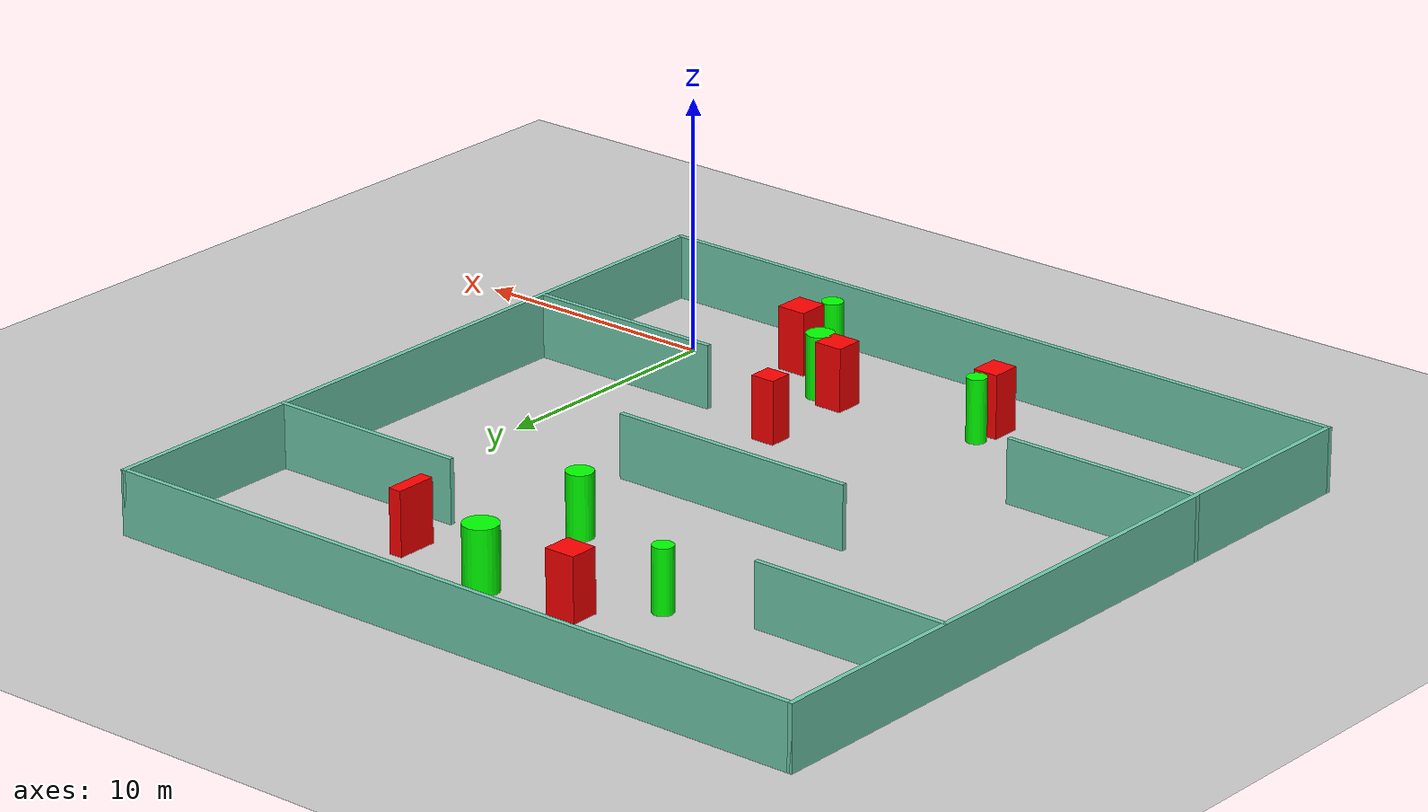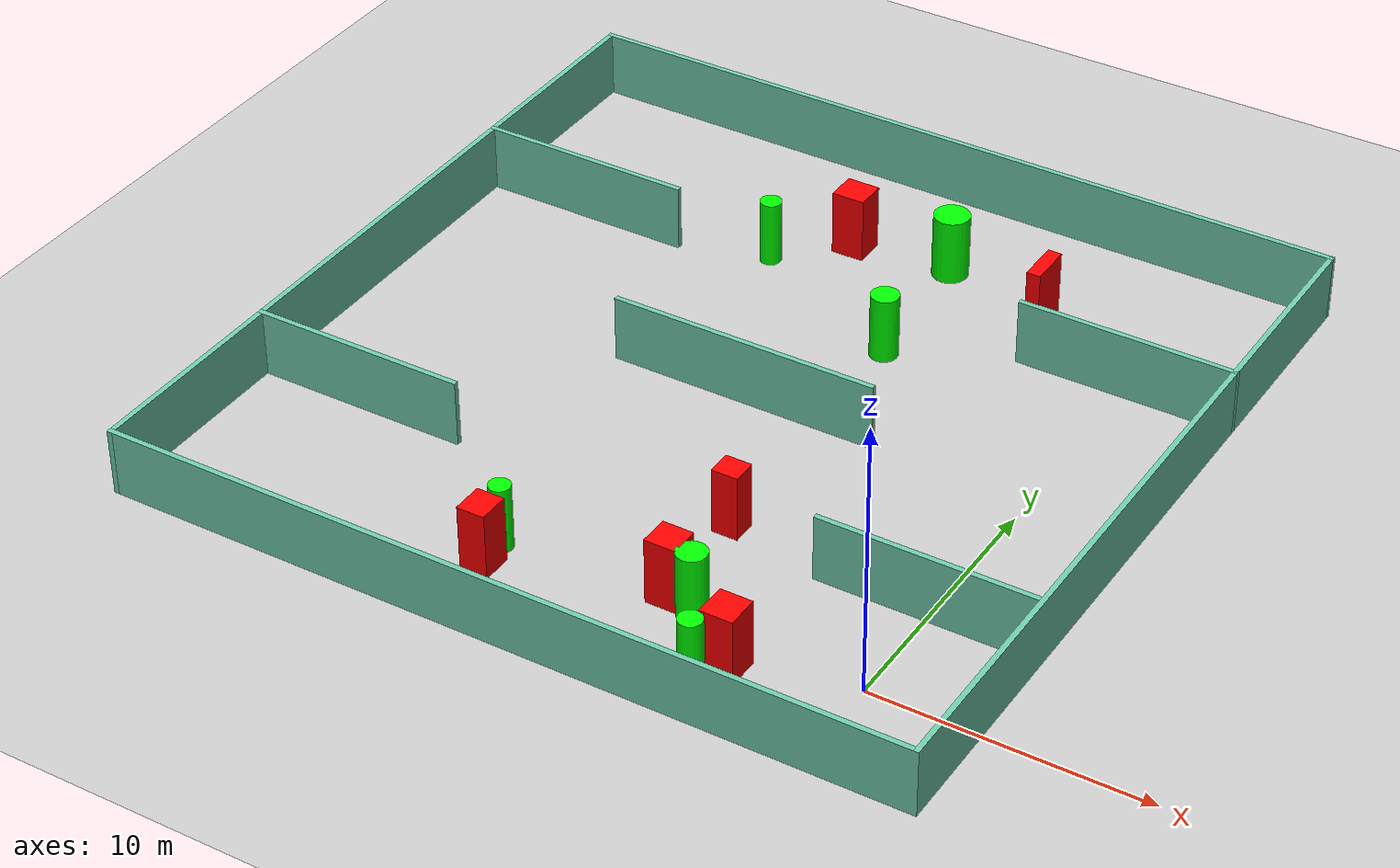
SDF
<sdf version="1.7">
 <world name="default">
  <light name="sun" type="directional">
   <pose>0 0 10 0 -0 0</pose>
   <diffuse>0.8 0.8 0.8 1</diffuse>
   <specular>0.2 0.2 0.2 1</specular>
   <attenuation>
    <range>1000</range>
    <constant>0.9</constant>
    <linear>0.01</linear>
    <quadratic>0.001</quadratic>
   </attenuation>
   <direction>-0.5 0.1 -0.9</direction>
   <spot><inner_angle>0</inner_angle><outer_angle>0</outer_angle><falloff>0</falloff></spot>
  </light>
  <model name="ground_plane">
   <static>1</static>
   <link name="link">
    <collision name="collision">
     <geometry><plane><normal>0 0 1</normal><size>100 100</size></plane></geometry>
     <surface>
      <contact><collide_bitmask>65535</collide_bitmask></contact>
      <friction><ode><mu>100</mu><mu2>50</mu2></ode></friction>
     </surface>
    </collision>
    <visual name="visual">
     <cast_shadows>0</cast_shadows>
     <geometry><plane><normal>0 0 1</normal><size>100 100</size></plane></geometry>
     <material>
      <script><uri>file://media/materials/scripts/gazebo.material</uri><name>Gazebo/Grey</name></script>
     </material>
    </visual>
   </link>
  </model>
  <gravity>0 0 -9.8</gravity>
  <magnetic_field>6e-06 2.3e-05 -4.2e-05</magnetic_field>
  <atmosphere type="adiabatic"/>
  <physics type="ode">
   <max_step_size>0.001</max_step_size>
   <real_time_factor>1</real_time_factor>
   <real_time_update_rate>1000</real_time_update_rate>
  </physics>
  <scene><ambient>0.4 0.4 0.4 1</ambient><background>0.7 0.7 0.7 1</background><shadows>1</shadows></scene>
  <spherical_coordinates>
   <surface_model>EARTH_WGS84</surface_model>
   <latitude_deg>0</latitude_deg>
   <longitude_deg>0</longitude_deg>
   <elevation>0</elevation>
   <heading_deg>0</heading_deg>
  </spherical_coordinates>
  <model name="my_base_walls">
   <link name="Wall_10">
    <collision name="Wall_10_Collision">
     <geometry><box><size>8.2 0.2 2.5</size></box></geometry>
     <pose>0 0 1.25 0 -0 0</pose>
    </collision>
    <visual name="Wall_10_Visual">
     <pose>0 0 1.25 0 -0 0</pose>
     <geometry><box><size>8.2 0.2 2.5</size></box></geometry>
     <material>
      <script><uri>file://media/materials/scripts/gazebo.material</uri><name>Gazebo/Grey</name></script>
      <ambient>0.435294 0.796078 0.67451 1</ambient>
     </material>
     <meta><layer>0</layer></meta>
    </visual>
    <pose>-11 -7 0 0 -0 0</pose>
   </link>
   <link name="Wall_12">
    <collision name="Wall_12_Collision">
     <geometry><box><size>8.2 0.2 2.5</size></box></geometry>
     <pose>0 0 1.25 0 -0 0</pose>
    </collision>
    <visual name="Wall_12_Visual">
     <pose>0 0 1.25 0 -0 0</pose>
     <geometry><box><size>8.2 0.2 2.5</size></box></geometry>
     <material>
      <script><uri>file://media/materials/scripts/gazebo.material</uri><name>Gazebo/Grey</name></script>
      <ambient>0.435294 0.796078 0.67451 1</ambient>
     </material>
     <meta><layer>0</layer></meta>
    </visual>
    <pose>-11 7 0 0 -0 0</pose>
   </link>
   <link name="Wall_14">
    <collision name="Wall_14_Collision">
     <geometry><box><size>8.2 0.2 2.5</size></box></geometry>
     <pose>0 0 1.25 0 -0 0</pose>
    </collision>
    <visual name="Wall_14_Visual">
     <pose>0 0 1.25 0 -0 0</pose>
     <geometry><box><size>8.2 0.2 2.5</size></box></geometry>
     <material>
      <script><uri>file://media/materials/scripts/gazebo.material</uri><name>Gazebo/Grey</name></script>
      <ambient>0.435294 0.796078 0.67451 1</ambient>
     </material>
     <meta><layer>0</layer></meta>
    </visual>
    <pose>11 7 0 0 -0 3.14159</pose>
   </link>
   <link name="Wall_16">
    <collision name="Wall_16_Collision">
     <geometry><box><size>10.2 0.2 2.5</size></box></geometry>
     <pose>0 0 1.25 0 -0 0</pose>
    </collision>
    <visual name="Wall_16_Visual">
     <pose>0 0 1.25 0 -0 0</pose>
     <geometry><box><size>10.2 0.2 2.5</size></box></geometry>
     <material>
      <script><uri>file://media/materials/scripts/gazebo.material</uri><name>Gazebo/Grey</name></script>
      <ambient>0.435294 0.796078 0.67451 1</ambient>
     </material>
     <meta><layer>0</layer></meta>
    </visual>
    <pose>0 0 0 0 -0 3.14159</pose>
   </link>
   <link name="Wall_2">
    <collision name="Wall_2_Collision">
     <geometry><box><size>30.2 0.2 2.5</size></box></geometry>
     <pose>0 0 1.25 0 -0 0</pose>
    </collision>
    <visual name="Wall_2_Visual">
     <pose>0 0 1.25 0 -0 0</pose>
     <geometry><box><size>30.2 0.2 2.5</size></box></geometry>
     <material>
      <script><uri>file://media/materials/scripts/gazebo.material</uri><name>Gazebo/Grey</name></script>
      <ambient>0.435294 0.796078 0.67451 1</ambient>
     </material>
     <meta><layer>0</layer></meta>
    </visual>
    <pose>0 -15 0 0 -0 3.14159</pose>
   </link>
   <link name="Wall_3">
    <collision name="Wall_3_Collision">
     <geometry><box><size>30.2 0.2 2.5</size></box></geometry>
     <pose>0 0 1.25 0 -0 0</pose>
    </collision>
    <visual name="Wall_3_Visual">
     <pose>0 0 1.25 0 -0 0</pose>
     <geometry><box><size>30.2 0.2 2.5</size></box></geometry>
     <material>
      <script><uri>file://media/materials/scripts/gazebo.material</uri><name>Gazebo/Grey</name></script>
      <ambient>0.435294 0.796078 0.67451 1</ambient>
     </material>
     <meta><layer>0</layer></meta>
    </visual>
    <pose>-15 0 0 0 -0 1.5708</pose>
   </link>
   <link name="Wall_4">
    <collision name="Wall_4_Collision">
     <geometry><box><size>30.2 0.2 2.5</size></box></geometry>
     <pose>0 0 1.25 0 -0 0</pose>
    </collision>
    <visual name="Wall_4_Visual">
     <pose>0 0 1.25 0 -0 0</pose>
     <geometry><box><size>30.2 0.2 2.5</size></box></geometry>
     <material>
      <script><uri>file://media/materials/scripts/gazebo.material</uri><name>Gazebo/Grey</name></script>
      <ambient>0.435294 0.796078 0.67451 1</ambient>
     </material>
     <meta><layer>0</layer></meta>
    </visual>
    <pose>0 15 0 0 -0 0</pose>
   </link>
   <link name="Wall_6">
    <collision name="Wall_6_Collision">
     <geometry><box><size>30.2 0.2 2.5</size></box></geometry>
     <pose>0 0 1.25 0 -0 0</pose>
    </collision>
    <visual name="Wall_6_Visual">
     <pose>0 0 1.25 0 -0 0</pose>
     <geometry><box><size>30.2 0.2 2.5</size></box></geometry>
     <material>
      <script><uri>file://media/materials/scripts/gazebo.material</uri><name>Gazebo/Grey</name></script>
      <ambient>0.435294 0.796078 0.67451 1</ambient>
     </material>
     <meta><layer>0</layer></meta>
    </visual>
    <pose>15 0 0 0 -0 1.5708</pose>
   </link>
   <link name="Wall_8">
    <collision name="Wall_8_Collision">
     <geometry><box><size>8.2 0.2 2.5</size></box></geometry>
     <pose>0 0 1.25 0 -0 0</pose>
    </collision>
    <visual name="Wall_8_Visual">
     <pose>0 0 1.25 0 -0 0</pose>
     <geometry><box><size>8.2 0.2 2.5</size></box></geometry>
     <material>
      <script><uri>file://media/materials/scripts/gazebo.material</uri><name>Gazebo/Grey</name></script>
      <ambient>0.435294 0.796078 0.67451 1</ambient>
     </material>
     <meta><layer>0</layer></meta>
    </visual>
    <pose>11 -7 0 0 -0 3.14159</pose>
   </link>
   <static>1</static>
   <pose>-11 11 0 0 -0 0</pose>
  </model>
  <model name="cylinder1">
   <static>1</static>
   <link name="link">
    <inertial>
     <mass>1</mass>
     <inertia><ixx>0.5</ixx><ixy>0</ixy><ixz>0</ixz><iyy>0.5</iyy><iyz>0</iyz><izz>1</izz></inertia>
    </inertial>
    <collision name="collision">
     <geometry><cylinder><radius>0.4050356095038431</radius><length>2.5</length></cylinder></geometry>
    </collision>
    <visual name="visual">
     <geometry><cylinder><radius>0.4050356095038431</radius><length>2.5</length></cylinder></geometry>
     <material>
      <ambient>0 1 0 1</ambient>
      <diffuse>0 1 0 1</diffuse>
      <specular>0.1 0.1 0.1 1</specular>
      <emissive>0 0 0 0</emissive>
     </material>
    </visual>
   </link>
   <pose>-14.661264872799409 19.013526727993877 1.25 0 0 0</pose>
  </model>
  <model name="cylinder2">
   <static>1</static>
   <link name="link">
    <inertial>
     <mass>1</mass>
     <inertia><ixx>0.5</ixx><ixy>0</ixy><ixz>0</ixz><iyy>0.5</iyy><iyz>0</iyz><izz>1</izz></inertia>
    </inertial>
    <collision name="collision">
     <geometry><cylinder><radius>0.4264479746175014</radius><length>2.5</length></cylinder></geometry>
    </collision>
    <visual name="visual">
     <geometry><cylinder><radius>0.4264479746175014</radius><length>2.5</length></cylinder></geometry>
     <material>
      <ambient>0 1 0 1</ambient>
      <diffuse>0 1 0 1</diffuse>
      <specular>0.1 0.1 0.1 1</specular>
      <emissive>0 0 0 0</emissive>
     </material>
    </visual>
   </link>
   <pose>-4.778207232490637 -2.353179636397915 1.25 0 0 0</pose>
  </model>
  <model name="cylinder3">
   <static>1</static>
   <link name="link">
    <inertial>
     <mass>1</mass>
     <inertia><ixx>0.5</ixx><ixy>0</ixy><ixz>0</ixz><iyy>0.5</iyy><iyz>0</iyz><izz>1</izz></inertia>
    </inertial>
    <collision name="collision">
     <geometry><cylinder><radius>0.5476409340282061</radius><length>2.5</length></cylinder></geometry>
    </collision>
    <visual name="visual">
     <geometry><cylinder><radius>0.5476409340282061</radius><length>2.5</length></cylinder></geometry>
     <material>
      <ambient>0 1 0 1</ambient>
      <diffuse>0 1 0 1</diffuse>
      <specular>0.1 0.1 0.1 1</specular>
      <emissive>0 0 0 0</emissive>
     </material>
    </visual>
   </link>
   <pose>-6.463301500141123 0.4387551804081897 1.25 0 0 0</pose>
  </model>
  <model name="cylinder4">
   <static>1</static>
   <link name="link">
    <inertial>
     <mass>1</mass>
     <inertia><ixx>0.5</ixx><ixy>0</ixy><ixz>0</ixz><iyy>0.5</iyy><iyz>0</iyz><izz>1</izz></inertia>
    </inertial>
    <collision name="collision">
     <geometry><cylinder><radius>0.3928979551562861</radius><length>2.5</length></cylinder></geometry>
    </collision>
    <visual name="visual">
     <geometry><cylinder><radius>0.3928979551562861</radius><length>2.5</length></cylinder></geometry>
     <material>
      <ambient>0 1 0 1</ambient>
      <diffuse>0 1 0 1</diffuse>
      <specular>0.1 0.1 0.1 1</specular>
      <emissive>0 0 0 0</emissive>
     </material>
    </visual>
   </link>
   <pose>-13.523478430800589 0.16235228138500846 1.25 0 0 0</pose>
  </model>
  <model name="cylinder5">
   <static>1</static>
   <link name="link">
    <inertial>
     <mass>1</mass>
     <inertia><ixx>0.5</ixx><ixy>0</ixy><ixz>0</ixz><iyy>0.5</iyy><iyz>0</iyz><izz>1</izz></inertia>
    </inertial>
    <collision name="collision">
     <geometry><cylinder><radius>0.6766036624832946</radius><length>2.5</length></cylinder></geometry>
    </collision>
    <visual name="visual">
     <geometry><cylinder><radius>0.6766036624832946</radius><length>2.5</length></cylinder></geometry>
     <material>
      <ambient>0 1 0 1</ambient>
      <diffuse>0 1 0 1</diffuse>
      <specular>0.1 0.1 0.1 1</specular>
      <emissive>0 0 0 0</emissive>
     </material>
    </visual>
   </link>
   <pose>-8.66521803279799 21.567331367196857 1.25 0 0 0</pose>
  </model>
  <model name="cylinder6">
   <static>1</static>
   <link name="link">
    <inertial>
     <mass>1</mass>
     <inertia><ixx>0.5</ixx><ixy>0</ixy><ixz>0</ixz><iyy>0.5</iyy><iyz>0</iyz><izz>1</izz></inertia>
    </inertial>
    <collision name="collision">
     <geometry><cylinder><radius>0.5227663440174812</radius><length>2.5</length></cylinder></geometry>
    </collision>
    <visual name="visual">
     <geometry><cylinder><radius>0.5227663440174812</radius><length>2.5</length></cylinder></geometry>
     <material>
      <ambient>0 1 0 1</ambient>
      <diffuse>0 1 0 1</diffuse>
      <specular>0.1 0.1 0.1 1</specular>
      <emissive>0 0 0 0</emissive>
     </material>
    </visual>
   </link>
   <pose>-8.24517545970643 15.935310414853067 1.25 0 0 0</pose>
  </model>
  <model name="box1">
   <static>1</static>
   <link name="link">
    <inertial>
     <mass>1</mass>
     <inertia><ixx>0.083</ixx><ixy>0</ixy><ixz>0</ixz><iyy>0.083</iyy><iyz>0</iyz><izz>0.083</izz></inertia>
    </inertial>
    <collision name="collision">
     <geometry><box><size>1.1580497270106718 1.1256333604261535 2.5</size></box></geometry>
    </collision>
    <visual name="visual">
     <geometry><box><size>1.1580497270106718 1.1256333604261535 2.5</size></box></geometry>
     <material>
      <ambient>1 0 0 1</ambient>
      <diffuse>1 0 0 1</diffuse>
      <specular>0.1 0.1 0.1 1</specular>
      <emissive>0 0 0 0</emissive>
     </material>
    </visual>
    <sensor name="my_contact" type="contact">
     <contact><collision>box_collision</collision><topic>__default_topic__</topic></contact>
    </sensor>
   </link>
   <pose>-7.481257580484215 0.7105675883329607 1.25 0 0 0</pose>
  </model>
  <model name="box2">
   <static>1</static>
   <link name="link">
    <inertial>
     <mass>1</mass>
     <inertia><ixx>0.083</ixx><ixy>0</ixy><ixz>0</ixz><iyy>0.083</iyy><iyz>0</iyz><izz>0.083</izz></inertia>
    </inertial>
    <collision name="collision">
     <geometry><box><size>1.1937679180284306 1.2335427248227724 2.5</size></box></geometry>
    </collision>
    <visual name="visual">
     <geometry><box><size>1.1937679180284306 1.2335427248227724 2.5</size></box></geometry>
     <material>
      <ambient>1 0 0 1</ambient>
      <diffuse>1 0 0 1</diffuse>
      <specular>0.1 0.1 0.1 1</specular>
      <emissive>0 0 0 0</emissive>
     </material>
    </visual>
    <sensor name="my_contact" type="contact">
     <contact><collision>box_collision</collision><topic>__default_topic__</topic></contact>
    </sensor>
   </link>
   <pose>-4.162618424949583 -1.2766000175449679 1.25 0 0 0</pose>
  </model>
  <model name="box3">
   <static>1</static>
   <link name="link">
    <inertial>
     <mass>1</mass>
     <inertia><ixx>0.083</ixx><ixy>0</ixy><ixz>0</ixz><iyy>0.083</iyy><iyz>0</iyz><izz>0.083</izz></inertia>
    </inertial>
    <collision name="collision">
     <geometry><box><size>1.0387678477431108 1.1682430412883524 2.5</size></box></geometry>
    </collision>
    <visual name="visual">
     <geometry><box><size>1.0387678477431108 1.1682430412883524 2.5</size></box></geometry>
     <material>
      <ambient>1 0 0 1</ambient>
      <diffuse>1 0 0 1</diffuse>
      <specular>0.1 0.1 0.1 1</specular>
      <emissive>0 0 0 0</emissive>
     </material>
    </visual>
    <sensor name="my_contact" type="contact">
     <contact><collision>box_collision</collision><topic>__default_topic__</topic></contact>
    </sensor>
   </link>
   <pose>-13.501367465051526 -0.9349718683469246 1.25 0 0 0</pose>
  </model>
  <model name="box4">
   <static>1</static>
   <link name="link">
    <inertial>
     <mass>1</mass>
     <inertia><ixx>0.083</ixx><ixy>0</ixy><ixz>0</ixz><iyy>0.083</iyy><iyz>0</iyz><izz>0.083</izz></inertia>
    </inertial>
    <collision name="collision">
     <geometry><box><size>0.5255205564417942 1.659576618050518 2.5</size></box></geometry>
    </collision>
    <visual name="visual">
     <geometry><box><size>0.5255205564417942 1.659576618050518 2.5</size></box></geometry>
     <material>
      <ambient>1 0 0 1</ambient>
      <diffuse>1 0 0 1</diffuse>
      <specular>0.1 0.1 0.1 1</specular>
      <emissive>0 0 0 0</emissive>
     </material>
    </visual>
    <sensor name="my_contact" type="contact">
     <contact><collision>box_collision</collision><topic>__default_topic__</topic></contact>
    </sensor>
   </link>
   <pose>-4.44376479157588 20.503763097251046 1.25 0 0 0</pose>
  </model>
  <model name="box5">
   <static>1</static>
   <link name="link">
    <inertial>
     <mass>1</mass>
     <inertia><ixx>0.083</ixx><ixy>0</ixy><ixz>0</ixz><iyy>0.083</iyy><iyz>0</iyz><izz>0.083</izz></inertia>
    </inertial>
    <collision name="collision">
     <geometry><box><size>0.9869416202209822 0.9279702118496157 2.5</size></box></geometry>
    </collision>
    <visual name="visual">
     <geometry><box><size>0.9869416202209822 0.9279702118496157 2.5</size></box></geometry>
     <material>
      <ambient>1 0 0 1</ambient>
      <diffuse>1 0 0 1</diffuse>
      <specular>0.1 0.1 0.1 1</specular>
      <emissive>0 0 0 0</emissive>
     </material>
    </visual>
    <sensor name="my_contact" type="contact">
     <contact><collision>box_collision</collision><topic>__default_topic__</topic></contact>
    </sensor>
   </link>
   <pose>-7.664232450228738 4.791727273168023 1.25 0 0 0</pose>
  </model>
  <model name="box6">
   <static>1</static>
   <link name="link">
    <inertial>
     <mass>1</mass>
     <inertia><ixx>0.083</ixx><ixy>0</ixy><ixz>0</ixz><iyy>0.083</iyy><iyz>0</iyz><izz>0.083</izz></inertia>
    </inertial>
    <collision name="collision">
     <geometry><box><size>1.244120199050493 1.162148738639082 2.5</size></box></geometry>
    </collision>
    <visual name="visual">
     <geometry><box><size>1.244120199050493 1.162148738639082 2.5</size></box></geometry>
     <material>
      <ambient>1 0 0 1</ambient>
      <diffuse>1 0 0 1</diffuse>
      <specular>0.1 0.1 0.1 1</specular>
      <emissive>0 0 0 0</emissive>
     </material>
    </visual>
    <sensor name="my_contact" type="contact">
     <contact><collision>box_collision</collision><topic>__default_topic__</topic></contact>
    </sensor>
   </link>
   <pose>-12.395521670884 21.187216786481038 1.25 0 0 0</pose>
  </model>
 </world>
</sdf>
